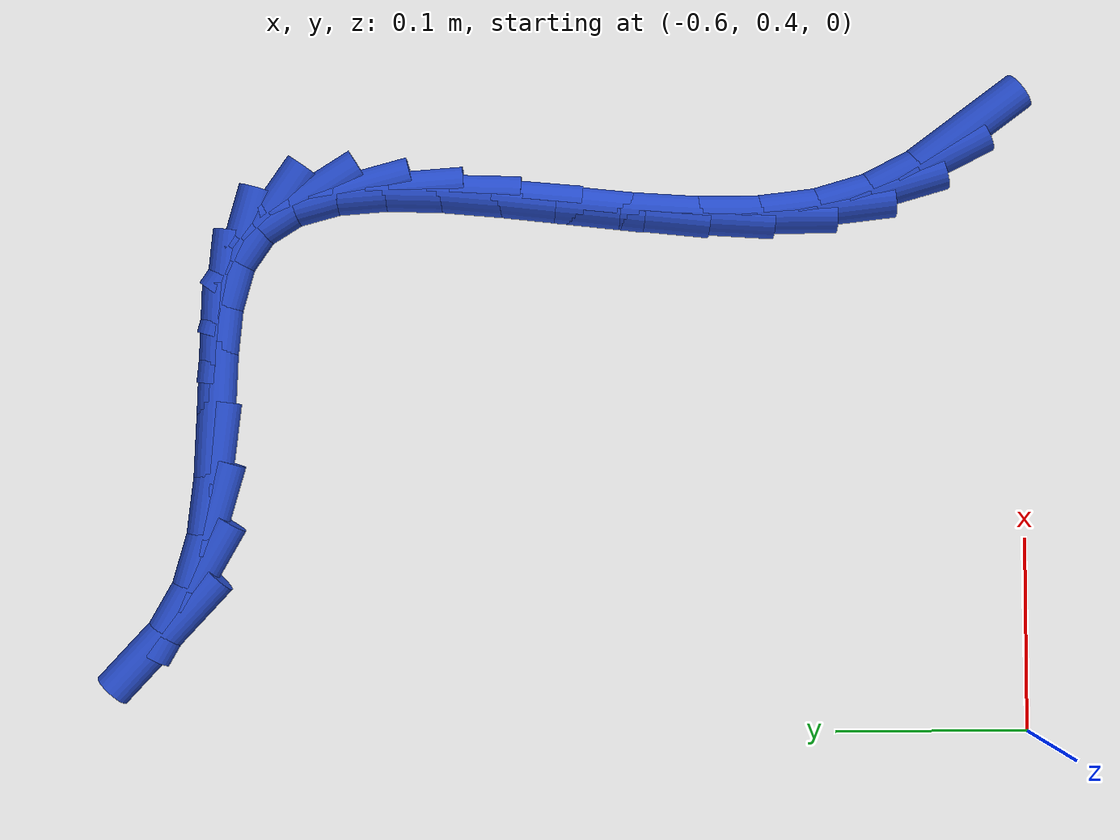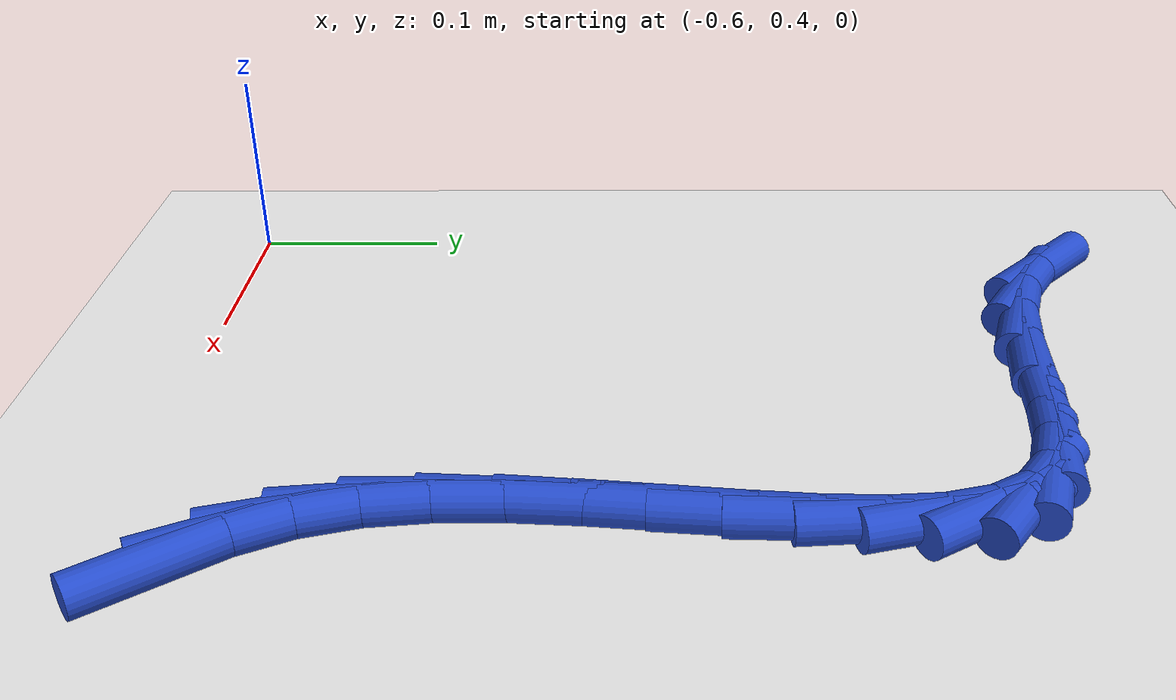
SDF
<sdf version="1.6">
 <world name="default">
  <model name="ground_plane">
   <static>1</static>
   <link name="link">
    <collision name="collision">
     <geometry><plane><normal>0 0 1</normal><size>100 100</size></plane></geometry>
     <surface><friction><ode><mu>100</mu><mu2>50</mu2></ode></friction></surface>
    </collision>
    <visual name="visual">
     <cast_shadows>0</cast_shadows>
     <geometry><plane><normal>0 0 1</normal><size>100 100</size></plane></geometry>
     <material>
      <script><uri>file://media/materials/scripts/gazebo.material</uri><name>Gazebo/WhiteGlow</name></script>
     </material>
    </visual>
   </link>
  </model>
  <model name="line">
   <link name="link_20">
    <pose>-0.29076524432493434 0.4338975788893802 0.01 0 1.57 -0.9358639048798788</pose>
    <collision name="collision">
     <geometry><cylinder><radius>0.01</radius><length>0.08</length></cylinder></geometry>
    </collision>
    <visual name="visual">
     <material>
      <script><name>Gazebo/Blue</name><uri>file://media/materials/scripts/gazebo.material</uri></script>
     </material>
     <geometry><cylinder><radius>0.01</radius><length>0.08</length></cylinder></geometry>
    </visual>
   </link>
   <link name="link_21">
    <pose>-0.30690372469778404 0.45580412829823924 0.01 0 1.57 -1.1064546700520779</pose>
    <collision name="collision">
     <geometry><cylinder><radius>0.01</radius><length>0.08</length></cylinder></geometry>
    </collision>
    <visual name="visual">
     <material>
      <script><name>Gazebo/Blue</name><uri>file://media/materials/scripts/gazebo.material</uri></script>
     </material>
     <geometry><cylinder><radius>0.01</radius><length>0.08</length></cylinder></geometry>
    </visual>
   </link>
   <link name="link_22">
    <pose>-0.3191482210187043 0.48025068850841524 0.01 0 1.57 -1.294887156933358</pose>
    <collision name="collision">
     <geometry><cylinder><radius>0.01</radius><length>0.08</length></cylinder></geometry>
    </collision>
    <visual name="visual">
     <material>
      <script><name>Gazebo/Blue</name><uri>file://media/materials/scripts/gazebo.material</uri></script>
     </material>
     <geometry><cylinder><radius>0.01</radius><length>0.08</length></cylinder></geometry>
    </visual>
   </link>
   <link name="link_23">
    <pose>-0.32689605594745785 0.5076155865667633 0.01 0 1.57 -1.4591172901791665</pose>
    <collision name="collision">
     <geometry><cylinder><radius>0.01</radius><length>0.08</length></cylinder></geometry>
    </collision>
    <visual name="visual">
     <material>
      <script><name>Gazebo/Blue</name><uri>file://media/materials/scripts/gazebo.material</uri></script>
     </material>
     <geometry><cylinder><radius>0.01</radius><length>0.08</length></cylinder></geometry>
    </visual>
   </link>
   <link name="link_24">
    <pose>-0.3302745105603986 0.537741180653424 0.01 0 1.57 -1.570460866137799</pose>
    <collision name="collision">
     <geometry><cylinder><radius>0.01</radius><length>0.08</length></cylinder></geometry>
    </collision>
    <visual name="visual">
     <material>
      <script><name>Gazebo/Blue</name><uri>file://media/materials/scripts/gazebo.material</uri></script>
     </material>
     <geometry><cylinder><radius>0.01</radius><length>0.08</length></cylinder></geometry>
    </visual>
   </link>
   <link name="link_25">
    <pose>-0.33028527435863436 0.569827798276914 0.01 0 1.57 1.5015405704622893</pose>
    <collision name="collision">
     <geometry><cylinder><radius>0.01</radius><length>0.08</length></cylinder></geometry>
    </collision>
    <visual name="visual">
     <material>
      <script><name>Gazebo/Blue</name><uri>file://media/materials/scripts/gazebo.material</uri></script>
     </material>
     <geometry><cylinder><radius>0.01</radius><length>0.08</length></cylinder></geometry>
    </visual>
   </link>
   <link name="link_26">
    <pose>-0.32798159884435163 0.6030379077654799 0.01 0 1.57 1.4647691158746887</pose>
    <collision name="collision">
     <geometry><cylinder><radius>0.01</radius><length>0.08</length></cylinder></geometry>
    </collision>
    <visual name="visual">
     <material>
      <script><name>Gazebo/Blue</name><uri>file://media/materials/scripts/gazebo.material</uri></script>
     </material>
     <geometry><cylinder><radius>0.01</radius><length>0.08</length></cylinder></geometry>
    </visual>
   </link>
   <link name="link_27">
    <pose>-0.3244167355197362 0.6365339774473685 0.01 0 1.57 1.456773189536596</pose>
    <collision name="collision">
     <geometry><cylinder><radius>0.01</radius><length>0.08</length></cylinder></geometry>
    </collision>
    <visual name="visual">
     <material>
      <script><name>Gazebo/Blue</name><uri>file://media/materials/scripts/gazebo.material</uri></script>
     </material>
     <geometry><cylinder><radius>0.01</radius><length>0.08</length></cylinder></geometry>
    </visual>
   </link>
   <link name="link_28">
    <pose>-0.3206439358869746 0.6694784756508259 0.01 0 1.57 1.4782882539731652</pose>
    <collision name="collision">
     <geometry><cylinder><radius>0.01</radius><length>0.08</length></cylinder></geometry>
    </collision>
    <visual name="visual">
     <material>
      <script><name>Gazebo/Blue</name><uri>file://media/materials/scripts/gazebo.material</uri></script>
     </material>
     <geometry><cylinder><radius>0.01</radius><length>0.08</length></cylinder></geometry>
    </visual>
   </link>
   <link name="link_29">
    <pose>-0.317716451448253 0.7010338707040993 0.01 0 1.57 1.535728498206944</pose>
    <collision name="collision">
     <geometry><cylinder><radius>0.01</radius><length>0.08</length></cylinder></geometry>
    </collision>
    <visual name="visual">
     <material>
      <script><name>Gazebo/Blue</name><uri>file://media/materials/scripts/gazebo.material</uri></script>
     </material>
     <geometry><cylinder><radius>0.01</radius><length>0.08</length></cylinder></geometry>
    </visual>
   </link>
   <link name="link_30">
    <pose>-0.31668753370575736 0.7303626309354347 0.01 0 1.57 -1.4977140685590402</pose>
    <collision name="collision">
     <geometry><cylinder><radius>0.01</radius><length>0.08</length></cylinder></geometry>
    </collision>
    <visual name="visual">
     <material>
      <script><name>Gazebo/Blue</name><uri>file://media/materials/scripts/gazebo.material</uri></script>
     </material>
     <geometry><cylinder><radius>0.01</radius><length>0.08</length></cylinder></geometry>
    </visual>
   </link>
   <link name="link_31">
    <pose>-0.31861043416167395 0.7566272246730791 0.01 0 1.57 -1.311675270644913</pose>
    <collision name="collision">
     <geometry><cylinder><radius>0.01</radius><length>0.08</length></cylinder></geometry>
    </collision>
    <visual name="visual">
     <material>
      <script><name>Gazebo/Blue</name><uri>file://media/materials/scripts/gazebo.material</uri></script>
     </material>
     <geometry><cylinder><radius>0.01</radius><length>0.08</length></cylinder></geometry>
    </visual>
   </link>
   <link name="link_32">
    <pose>-0.3245384043181891 0.7789901202452789 0.01 0 1.57 -1.0133607353532903</pose>
    <collision name="collision">
     <geometry><cylinder><radius>0.01</radius><length>0.08</length></cylinder></geometry>
    </collision>
    <visual name="visual">
     <material>
      <script><name>Gazebo/Blue</name><uri>file://media/materials/scripts/gazebo.material</uri></script>
     </material>
     <geometry><cylinder><radius>0.01</radius><length>0.08</length></cylinder></geometry>
    </visual>
   </link>
   <link name="link_33">
    <pose>-0.33552469567748877 0.796613785980281 0.01 0 1.57 -0.6149619780375356</pose>
    <collision name="collision">
     <geometry><cylinder><radius>0.01</radius><length>0.08</length></cylinder></geometry>
    </collision>
    <visual name="visual">
     <material>
      <script><name>Gazebo/Blue</name><uri>file://media/materials/scripts/gazebo.material</uri></script>
     </material>
     <geometry><cylinder><radius>0.01</radius><length>0.08</length></cylinder></geometry>
    </visual>
   </link>
   <link name="link_34">
    <pose>-0.35260465458649803 0.8086778813732771 0.01 0 1.57 -0.2820225873372577</pose>
    <collision name="collision">
     <geometry><cylinder><radius>0.01</radius><length>0.08</length></cylinder></geometry>
    </collision>
    <visual name="visual">
     <material>
      <script><name>Gazebo/Blue</name><uri>file://media/materials/scripts/gazebo.material</uri></script>
     </material>
     <geometry><cylinder><radius>0.01</radius><length>0.08</length></cylinder></geometry>
    </visual>
   </link>
   <link name="link_35">
    <pose>-0.37574931229785646 0.8153839402456678 0.01 0 1.57 -0.11310902173831741</pose>
    <collision name="collision">
     <geometry><cylinder><radius>0.01</radius><length>0.08</length></cylinder></geometry>
    </collision>
    <visual name="visual">
     <material>
      <script><name>Gazebo/Blue</name><uri>file://media/materials/scripts/gazebo.material</uri></script>
     </material>
     <geometry><cylinder><radius>0.01</radius><length>0.08</length></cylinder></geometry>
    </visual>
   </link>
   <link name="link_36">
    <pose>-0.40328573282687336 0.8185119086033424 0.01 0 1.57 -0.04860806008312421</pose>
    <collision name="collision">
     <geometry><cylinder><radius>0.01</radius><length>0.08</length></cylinder></geometry>
    </collision>
    <visual name="visual">
     <material>
      <script><name>Gazebo/Blue</name><uri>file://media/materials/scripts/gazebo.material</uri></script>
     </material>
     <geometry><cylinder><radius>0.01</radius><length>0.08</length></cylinder></geometry>
    </visual>
   </link>
   <link name="link_37">
    <pose>-0.4334002302172056 0.8199768698595419 0.01 0 1.57 -0.055548345752630394</pose>
    <collision name="collision">
     <geometry><cylinder><radius>0.01</radius><length>0.08</length></cylinder></geometry>
    </collision>
    <visual name="visual">
     <material>
      <script><name>Gazebo/Blue</name><uri>file://media/materials/scripts/gazebo.material</uri></script>
     </material>
     <geometry><cylinder><radius>0.01</radius><length>0.08</length></cylinder></geometry>
    </visual>
   </link>
   <link name="link_38">
    <pose>-0.46427911851251036 0.8216939074275069 0.01 0 1.57 -0.12948434203049283</pose>
    <collision name="collision">
     <geometry><cylinder><radius>0.01</radius><length>0.08</length></cylinder></geometry>
    </collision>
    <visual name="visual">
     <material>
      <script><name>Gazebo/Blue</name><uri>file://media/materials/scripts/gazebo.material</uri></script>
     </material>
     <geometry><cylinder><radius>0.01</radius><length>0.08</length></cylinder></geometry>
    </visual>
   </link>
   <link name="link_39">
    <pose>-0.49410871175644394 0.8255781047204782 0.01 0 1.57 -0.2872287206106882</pose>
    <collision name="collision">
     <geometry><cylinder><radius>0.01</radius><length>0.08</length></cylinder></geometry>
    </collision>
    <visual name="visual">
     <material>
      <script><name>Gazebo/Blue</name><uri>file://media/materials/scripts/gazebo.material</uri></script>
     </material>
     <geometry><cylinder><radius>0.01</radius><length>0.08</length></cylinder></geometry>
    </visual>
   </link>
   <link name="link_40">
    <pose>-0.521075732464282 0.8335440874086932 0.01 0 1.57 -0.5282831732961094</pose>
    <collision name="collision">
     <geometry><cylinder><radius>0.01</radius><length>0.08</length></cylinder></geometry>
    </collision>
    <visual name="visual">
     <material>
      <script><name>Gazebo/Blue</name><uri>file://media/materials/scripts/gazebo.material</uri></script>
     </material>
     <geometry><cylinder><radius>0.01</radius><length>0.08</length></cylinder></geometry>
    </visual>
   </link>
   <link name="link_41">
    <pose>-0.5439260825493923 0.8468798514397184 0.01 0 1.57 -0.758006615489746</pose>
    <collision name="collision">
     <geometry><cylinder><radius>0.01</radius><length>0.08</length></cylinder></geometry>
    </collision>
    <visual name="visual">
     <material>
      <script><name>Gazebo/Blue</name><uri>file://media/materials/scripts/gazebo.material</uri></script>
     </material>
     <geometry><cylinder><radius>0.01</radius><length>0.08</length></cylinder></geometry>
    </visual>
   </link>
  </model>
 </world>
</sdf>
